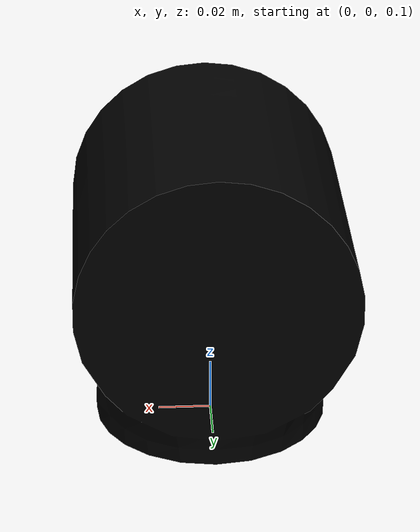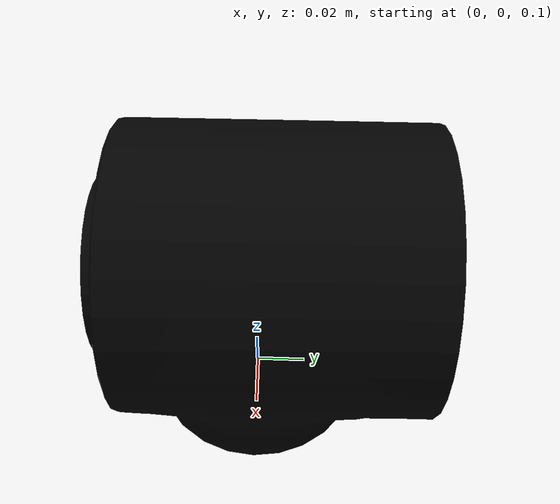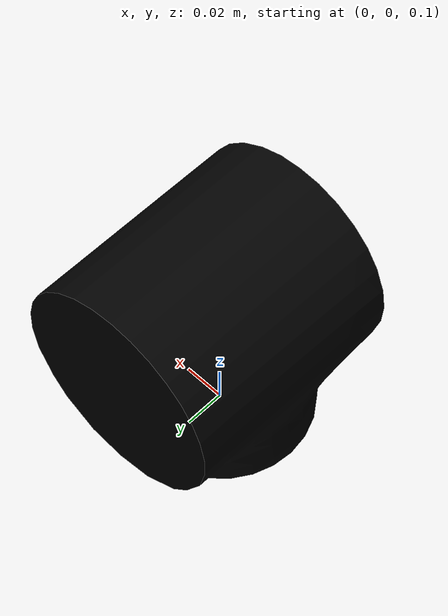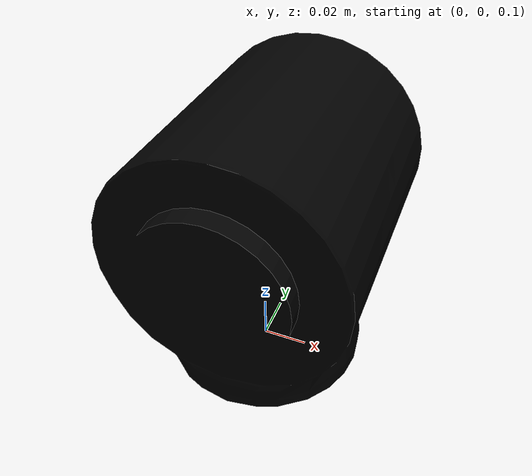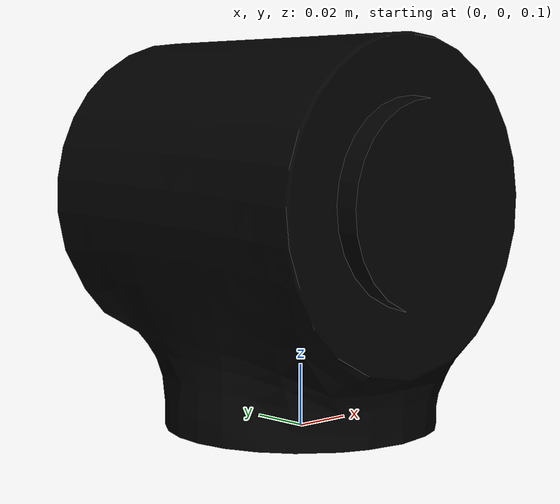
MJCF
<mujoco model="arm_r_link1">
  <default>
    <default class="visual">
      <geom group="2" type="mesh" contype="0" conaffinity="0"/>
    </default>
    <default class="collision">
      <geom group="3" type="mesh"/>
    </default>
  </default>
  <asset>
    <material name="material_arm_r_link1_0" specular="0.20000000000000004" shininess="1.0" rgba="0.00000000 0.00000000 0.00000000 1.0"/>
    <mesh file="arm_r_link1.obj"/>
  </asset>
  <worldbody>
    <body name="arm_r_link1">
      <geom material="material_arm_r_link1_0" mesh="arm_r_link1" class="visual"/>
      <geom mesh="arm_r_link1" class="collision"/>
    </body>
  </worldbody>
</mujoco>
